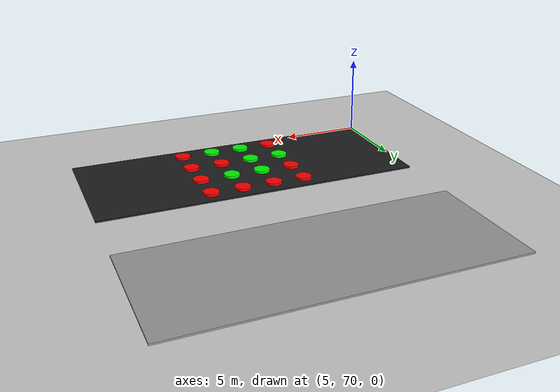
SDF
<sdf version="1.6">
 <world name="default">
  <light name="sun" type="directional">
   <pose>0 0 10 0 -0 0</pose>
   <diffuse>0.8 0.8 0.8 1</diffuse>
   <specular>0.2 0.2 0.2 1</specular>
   <attenuation>
    <range>1000</range>
    <constant>0.9</constant>
    <linear>0.01</linear>
    <quadratic>0.001</quadratic>
   </attenuation>
   <direction>-0.5 0.1 -0.9</direction>
  </light>
  <model name="ground_plane">
   <pose>15 45 0 0 -0 0</pose>
   <static>1</static>
   <link name="link">
    <collision name="collision">
     <geometry><plane><normal>0 0 1</normal><size>100 100</size></plane></geometry>
     <surface><friction><ode><mu>100</mu><mu2>50</mu2></ode></friction></surface>
    </collision>
    <visual name="visual">
     <cast_shadows>0</cast_shadows>
     <geometry><plane><normal>0 0 1</normal><size>30 90</size></plane></geometry>
     <material>
      <script><uri>file://media/materials/scripts/gazebo.material</uri><name>Gazebo/Grey</name></script>
     </material>
    </visual>
   </link>
  </model>
  <gravity>0 0 -9.8</gravity>
  <magnetic_field>6e-06 2.3e-05 -4.2e-05</magnetic_field>
  <atmosphere type="adiabatic"/>
  <physics name="default_physics" default="0" type="ode">
   <max_step_size>0.001</max_step_size>
   <real_time_factor>1</real_time_factor>
   <real_time_update_rate>1000</real_time_update_rate>
  </physics>
  <scene><ambient>0.4 0.4 0.4 1</ambient><background>0.7 0.7 0.7 1</background><shadows>1</shadows></scene>
  <spherical_coordinates>
   <surface_model>EARTH_WGS84</surface_model>
   <latitude_deg>0</latitude_deg>
   <longitude_deg>0</longitude_deg>
   <elevation>0</elevation>
   <heading_deg>0</heading_deg>
  </spherical_coordinates>
  <model name="platform">
   <link name="link_0">
    <inertial>
     <mass>1</mass>
     <inertia>
      <ixx>0.166667</ixx>
      <ixy>0</ixy>
      <ixz>0</ixz>
      <iyy>0.166667</iyy>
      <iyz>0</iyz>
      <izz>0.166667</izz>
     </inertia>
    </inertial>
    <visual name="visual">
     <geometry><box><size>20 8 0.1</size></box></geometry>
     <material>
      <lighting>1</lighting>
      <script><uri>file://media/materials/scripts/gazebo.material</uri><name>Gazebo/Black</name></script>
      <shader type="pixel"><normal_map>__default__</normal_map></shader>
      <ambient>0.3 0.3 0.3 1</ambient>
      <diffuse>0.7 0.7 0.7 1</diffuse>
      <specular>0.01 0.01 0.01 1</specular>
      <emissive>0 0 0 1</emissive>
     </material>
    </visual>
    <collision name="collision">
     <geometry><box><size>20 8 0.1</size></box></geometry>
     <surface>
      <friction>
       <ode><mu>1</mu><mu2>1</mu2><fdir1>0 0 0</fdir1><slip1>0</slip1><slip2>0</slip2></ode>
       <torsional>
        <coefficient>1</coefficient>
        <patch_radius>0</patch_radius>
        <surface_radius>0</surface_radius>
        <use_patch_radius>1</use_patch_radius>
        <ode><slip>0</slip></ode>
       </torsional>
      </friction>
      <bounce><restitution_coefficient>0</restitution_coefficient><threshold>1e+06</threshold></bounce>
      <contact>
       <collide_without_contact>0</collide_without_contact>
       <collide_without_contact_bitmask>1</collide_without_contact_bitmask>
       <collide_bitmask>1</collide_bitmask>
       <ode>
        <soft_cfm>0</soft_cfm>
        <soft_erp>0.2</soft_erp>
        <kp>1e+13</kp>
        <kd>1</kd>
        <max_vel>0.01</max_vel>
        <min_depth>0</min_depth>
       </ode>
       <bullet>
        <split_impulse>1</split_impulse>
        <split_impulse_penetration_threshold>-0.01</split_impulse_penetration_threshold>
        <soft_cfm>0</soft_cfm>
        <soft_erp>0.2</soft_erp>
        <kp>1e+13</kp>
        <kd>1</kd>
       </bullet>
      </contact>
     </surface>
    </collision>
   </link>
   <static>0</static>
   <pose>15 74 0.05 0 0 0</pose>
  </model>
  <model name="platform_0">
   <link name="link_0">
    <inertial>
     <mass>1</mass>
     <inertia>
      <ixx>0.166667</ixx>
      <ixy>0</ixy>
      <ixz>0</ixz>
      <iyy>0.166667</iyy>
      <iyz>0</iyz>
      <izz>0.166667</izz>
     </inertia>
    </inertial>
    <visual name="visual">
     <geometry><box><size>20 8 0.1</size></box></geometry>
     <material>
      <lighting>1</lighting>
      <script><uri>file://media/materials/scripts/gazebo.material</uri><name>Gazebo/Grey</name></script>
      <shader type="pixel"><normal_map>__default__</normal_map></shader>
      <ambient>0.3 0.3 0.3 1</ambient>
      <diffuse>0.7 0.7 0.7 1</diffuse>
      <specular>0.01 0.01 0.01 1</specular>
      <emissive>0 0 0 1</emissive>
     </material>
    </visual>
    <collision name="collision">
     <geometry><box><size>20 8 0.1</size></box></geometry>
     <surface>
      <friction>
       <ode><mu>1</mu><mu2>1</mu2><fdir1>0 0 0</fdir1><slip1>0</slip1><slip2>0</slip2></ode>
       <torsional>
        <coefficient>1</coefficient>
        <patch_radius>0</patch_radius>
        <surface_radius>0</surface_radius>
        <use_patch_radius>1</use_patch_radius>
        <ode><slip>0</slip></ode>
       </torsional>
      </friction>
      <bounce><restitution_coefficient>0</restitution_coefficient><threshold>1e+06</threshold></bounce>
      <contact>
       <collide_without_contact>0</collide_without_contact>
       <collide_without_contact_bitmask>1</collide_without_contact_bitmask>
       <collide_bitmask>1</collide_bitmask>
       <ode>
        <soft_cfm>0</soft_cfm>
        <soft_erp>0.2</soft_erp>
        <kp>1e+13</kp>
        <kd>1</kd>
        <max_vel>0.01</max_vel>
        <min_depth>0</min_depth>
       </ode>
       <bullet>
        <split_impulse>1</split_impulse>
        <split_impulse_penetration_threshold>-0.01</split_impulse_penetration_threshold>
        <soft_cfm>0</soft_cfm>
        <soft_erp>0.2</soft_erp>
        <kp>1e+13</kp>
        <kd>1</kd>
       </bullet>
      </contact>
     </surface>
    </collision>
   </link>
   <static>0</static>
   <pose>15 86 0.05 0 0 0</pose>
  </model>
  <model name="red">
   <static>1</static>
   <link name="link">
    <visual name="visual"><geometry><mesh><uri>model://red/meshes/red.dae</uri></mesh></geometry></visual>
   </link>
   <pose>12 71 0.15 0 -0 0</pose>
  </model>
  <model name="red_0">
   <static>1</static>
   <link name="link">
    <visual name="visual"><geometry><mesh><uri>model://red/meshes/red.dae</uri></mesh></geometry></visual>
   </link>
   <pose>12 75 0.15 0 -0 0</pose>
  </model>
  <model name="red_1">
   <static>1</static>
   <link name="link">
    <visual name="visual"><geometry><mesh><uri>model://red/meshes/red.dae</uri></mesh></geometry></visual>
   </link>
   <pose>12 77 0.15 0 -0 0</pose>
  </model>
  <model name="red_2">
   <static>1</static>
   <link name="link">
    <visual name="visual"><geometry><mesh><uri>model://red/meshes/red.dae</uri></mesh></geometry></visual>
   </link>
   <pose>14 77 0.15 0 -0 0</pose>
  </model>
  <model name="red_3">
   <static>1</static>
   <link name="link">
    <visual name="visual"><geometry><mesh><uri>model://red/meshes/red.dae</uri></mesh></geometry></visual>
   </link>
   <pose>16 73 0.15 0 -0 0</pose>
  </model>
  <model name="red_4">
   <static>1</static>
   <link name="link">
    <visual name="visual"><geometry><mesh><uri>model://red/meshes/red.dae</uri></mesh></geometry></visual>
   </link>
   <pose>16 77 0.15 0 -0 0</pose>
  </model>
  <model name="red_5">
   <static>1</static>
   <link name="link">
    <visual name="visual"><geometry><mesh><uri>model://red/meshes/red.dae</uri></mesh></geometry></visual>
   </link>
   <pose>18 71 0.15 0 -0 0</pose>
  </model>
  <model name="red_6">
   <static>1</static>
   <link name="link">
    <visual name="visual"><geometry><mesh><uri>model://red/meshes/red.dae</uri></mesh></geometry></visual>
   </link>
   <pose>18 73 0.15 0 -0 0</pose>
  </model>
  <model name="red_7">
   <static>1</static>
   <link name="link">
    <visual name="visual"><geometry><mesh><uri>model://red/meshes/red.dae</uri></mesh></geometry></visual>
   </link>
   <pose>18 75 0.15 0 -0 0</pose>
  </model>
  <model name="red_8">
   <static>1</static>
   <link name="link">
    <visual name="visual"><geometry><mesh><uri>model://red/meshes/red.dae</uri></mesh></geometry></visual>
   </link>
   <pose>18 77 0.15 0 -0 0</pose>
  </model>
  <model name="green">
   <static>1</static>
   <link name="link">
    <visual name="visual"><geometry><mesh><uri>model://green/meshes/green.dae</uri></mesh></geometry></visual>
   </link>
   <pose>12 73 0.15 0 -0 0</pose>
  </model>
  <model name="green_0">
   <static>1</static>
   <link name="link">
    <visual name="visual"><geometry><mesh><uri>model://green/meshes/green.dae</uri></mesh></geometry></visual>
   </link>
   <pose>14 71 0.15 0 -0 0</pose>
  </model>
  <model name="green_1">
   <static>1</static>
   <link name="link">
    <visual name="visual"><geometry><mesh><uri>model://green/meshes/green.dae</uri></mesh></geometry></visual>
   </link>
   <pose>14 73 0.15 0 -0 0</pose>
  </model>
  <model name="green_2">
   <static>1</static>
   <link name="link">
    <visual name="visual"><geometry><mesh><uri>model://green/meshes/green.dae</uri></mesh></geometry></visual>
   </link>
   <pose>14 75 0.15 0 -0 0</pose>
  </model>
  <model name="green_3">
   <static>1</static>
   <link name="link">
    <visual name="visual"><geometry><mesh><uri>model://green/meshes/green.dae</uri></mesh></geometry></visual>
   </link>
   <pose>16 71 0.15 0 -0 0</pose>
  </model>
  <model name="green_4">
   <static>1</static>
   <link name="link">
    <visual name="visual"><geometry><mesh><uri>model://green/meshes/green.dae</uri></mesh></geometry></visual>
   </link>
   <pose>16 75 0.15 0 -0 0</pose>
  </model>
 </world>
</sdf>
